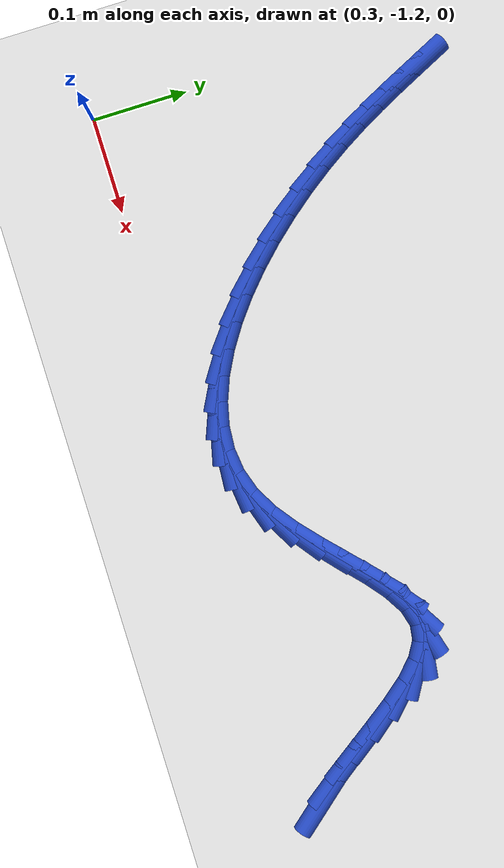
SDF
<sdf version="1.6">
 <world name="default">
  <model name="ground_plane">
   <static>1</static>
   <link name="link">
    <collision name="collision">
     <geometry><plane><normal>0 0 1</normal><size>100 100</size></plane></geometry>
     <surface><friction><ode><mu>100</mu><mu2>50</mu2></ode></friction></surface>
    </collision>
    <visual name="visual">
     <cast_shadows>0</cast_shadows>
     <geometry><plane><normal>0 0 1</normal><size>100 100</size></plane></geometry>
     <material>
      <script><uri>file://media/materials/scripts/gazebo.material</uri><name>Gazebo/WhiteGlow</name></script>
     </material>
    </visual>
   </link>
  </model>
  <model name="line">
   <link name="link_210">
    <pose>1.0375790568260825 -1.1791323190737744 0.01 0 1.57 -0.8643662372126113</pose>
    <collision name="collision">
     <geometry><cylinder><radius>0.01</radius><length>0.08</length></cylinder></geometry>
    </collision>
    <visual name="visual">
     <material>
      <script><name>Gazebo/Blue</name><uri>file://media/materials/scripts/gazebo.material</uri></script>
     </material>
     <geometry><cylinder><radius>0.01</radius><length>0.08</length></cylinder></geometry>
    </visual>
   </link>
   <link name="link_211">
    <pose>1.019030589205663 -1.1573960111573656 0.01 0 1.57 -0.9336557301680691</pose>
    <collision name="collision">
     <geometry><cylinder><radius>0.01</radius><length>0.08</length></cylinder></geometry>
    </collision>
    <visual name="visual">
     <material>
      <script><name>Gazebo/Blue</name><uri>file://media/materials/scripts/gazebo.material</uri></script>
     </material>
     <geometry><cylinder><radius>0.01</radius><length>0.08</length></cylinder></geometry>
    </visual>
   </link>
   <link name="link_212">
    <pose>1.0009759201199455 -1.1330013947562239 0.01 0 1.57 -0.9582950631995782</pose>
    <collision name="collision">
     <geometry><cylinder><radius>0.01</radius><length>0.08</length></cylinder></geometry>
    </collision>
    <visual name="visual">
     <material>
      <script><name>Gazebo/Blue</name><uri>file://media/materials/scripts/gazebo.material</uri></script>
     </material>
     <geometry><cylinder><radius>0.01</radius><length>0.08</length></cylinder></geometry>
    </visual>
   </link>
   <link name="link_213">
    <pose>0.9832339375587879 -1.1077512407800745 0.01 0 1.57 -0.9437365645763872</pose>
    <collision name="collision">
     <geometry><cylinder><radius>0.01</radius><length>0.08</length></cylinder></geometry>
    </collision>
    <visual name="visual">
     <material>
      <script><name>Gazebo/Blue</name><uri>file://media/materials/scripts/gazebo.material</uri></script>
     </material>
     <geometry><cylinder><radius>0.01</radius><length>0.08</length></cylinder></geometry>
    </visual>
   </link>
   <link name="link_214">
    <pose>0.965623529512047 -1.0834483201386411 0.01 0 1.57 -0.8843518211688481</pose>
    <collision name="collision">
     <geometry><cylinder><radius>0.01</radius><length>0.08</length></cylinder></geometry>
    </collision>
    <visual name="visual">
     <material>
      <script><name>Gazebo/Blue</name><uri>file://media/materials/scripts/gazebo.material</uri></script>
     </material>
     <geometry><cylinder><radius>0.01</radius><length>0.08</length></cylinder></geometry>
    </visual>
   </link>
   <link name="link_215">
    <pose>0.947963583969581 -1.0618954037416484 0.01 0 1.57 -0.7598824922310821</pose>
    <collision name="collision">
     <geometry><cylinder><radius>0.01</radius><length>0.08</length></cylinder></geometry>
    </collision>
    <visual name="visual">
     <material>
      <script><name>Gazebo/Blue</name><uri>file://media/materials/scripts/gazebo.material</uri></script>
     </material>
     <geometry><cylinder><radius>0.01</radius><length>0.08</length></cylinder></geometry>
    </visual>
   </link>
   <link name="link_216">
    <pose>0.9300729889212475 -1.0448952624988213 0.01 0 1.57 -0.5267779467179676</pose>
    <collision name="collision">
     <geometry><cylinder><radius>0.01</radius><length>0.08</length></cylinder></geometry>
    </collision>
    <visual name="visual">
     <material>
      <script><name>Gazebo/Blue</name><uri>file://media/materials/scripts/gazebo.material</uri></script>
     </material>
     <geometry><cylinder><radius>0.01</radius><length>0.08</length></cylinder></geometry>
    </visual>
   </link>
   <link name="link_217">
    <pose>0.9117706323569028 -1.0342506673198832 0.01 0 1.57 -0.13366536624466852</pose>
    <collision name="collision">
     <geometry><cylinder><radius>0.01</radius><length>0.08</length></cylinder></geometry>
    </collision>
    <visual name="visual">
     <material>
      <script><name>Gazebo/Blue</name><uri>file://media/materials/scripts/gazebo.material</uri></script>
     </material>
     <geometry><cylinder><radius>0.01</radius><length>0.08</length></cylinder></geometry>
    </visual>
   </link>
   <link name="link_218">
    <pose>0.8928782099697073 -1.03171025735867 0.01 0 1.57 0.2833987703408855</pose>
    <collision name="collision">
     <geometry><cylinder><radius>0.01</radius><length>0.08</length></cylinder></geometry>
    </collision>
    <visual name="visual">
     <material>
      <script><name>Gazebo/Blue</name><uri>file://media/materials/scripts/gazebo.material</uri></script>
     </material>
     <geometry><cylinder><radius>0.01</radius><length>0.08</length></cylinder></geometry>
    </visual>
   </link>
   <link name="link_219">
    <pose>0.8733009654070886 -1.0374118899375215 0.01 0 1.57 0.5433220270883908</pose>
    <collision name="collision">
     <geometry><cylinder><radius>0.01</radius><length>0.08</length></cylinder></geometry>
    </collision>
    <visual name="visual">
     <material>
      <script><name>Gazebo/Blue</name><uri>file://media/materials/scripts/gazebo.material</uri></script>
     </material>
     <geometry><cylinder><radius>0.01</radius><length>0.08</length></cylinder></geometry>
    </visual>
   </link>
   <link name="link_220">
    <pose>0.8530398246127422 -1.0496486937343479 0.01 0 1.57 0.6809078504208977</pose>
    <collision name="collision">
     <geometry><cylinder><radius>0.01</radius><length>0.08</length></cylinder></geometry>
    </collision>
    <visual name="visual">
     <material>
      <script><name>Gazebo/Blue</name><uri>file://media/materials/scripts/gazebo.material</uri></script>
     </material>
     <geometry><cylinder><radius>0.01</radius><length>0.08</length></cylinder></geometry>
    </visual>
   </link>
   <link name="link_221">
    <pose>0.8321009621017971 -1.0666126063975576 0.01 0 1.57 0.74379022459799</pose>
    <collision name="collision">
     <geometry><cylinder><radius>0.01</radius><length>0.08</length></cylinder></geometry>
    </collision>
    <visual name="visual">
     <material>
      <script><name>Gazebo/Blue</name><uri>file://media/materials/scripts/gazebo.material</uri></script>
     </material>
     <geometry><cylinder><radius>0.01</radius><length>0.08</length></cylinder></geometry>
    </visual>
   </link>
   <link name="link_222">
    <pose>0.8104905523893814 -1.0864955655755586 0.01 0 1.57 0.7557824389965457</pose>
    <collision name="collision">
     <geometry><cylinder><radius>0.01</radius><length>0.08</length></cylinder></geometry>
    </collision>
    <visual name="visual">
     <material>
      <script><name>Gazebo/Blue</name><uri>file://media/materials/scripts/gazebo.material</uri></script>
     </material>
     <geometry><cylinder><radius>0.01</radius><length>0.08</length></cylinder></geometry>
    </visual>
   </link>
   <link name="link_223">
    <pose>0.7882147699906247 -1.1074895089167596 0.01 0 1.57 0.724451236131454</pose>
    <collision name="collision">
     <geometry><cylinder><radius>0.01</radius><length>0.08</length></cylinder></geometry>
    </collision>
    <visual name="visual">
     <material>
      <script><name>Gazebo/Blue</name><uri>file://media/materials/scripts/gazebo.material</uri></script>
     </material>
     <geometry><cylinder><radius>0.01</radius><length>0.08</length></cylinder></geometry>
    </visual>
   </link>
   <link name="link_224">
    <pose>0.7652797894206552 -1.1277863740695688 0.01 0 1.57 0.6462283303173987</pose>
    <collision name="collision">
     <geometry><cylinder><radius>0.01</radius><length>0.08</length></cylinder></geometry>
    </collision>
    <visual name="visual">
     <material>
      <script><name>Gazebo/Blue</name><uri>file://media/materials/scripts/gazebo.material</uri></script>
     </material>
     <geometry><cylinder><radius>0.01</radius><length>0.08</length></cylinder></geometry>
    </visual>
   </link>
   <link name="link_225">
    <pose>0.741691785194602 -1.1455780986823947 0.01 0 1.57 0.5077355226130207</pose>
    <collision name="collision">
     <geometry><cylinder><radius>0.01</radius><length>0.08</length></cylinder></geometry>
    </collision>
    <visual name="visual">
     <material>
      <script><name>Gazebo/Blue</name><uri>file://media/materials/scripts/gazebo.material</uri></script>
     </material>
     <geometry><cylinder><radius>0.01</radius><length>0.08</length></cylinder></geometry>
    </visual>
   </link>
   <link name="link_226">
    <pose>0.7174573468472426 -1.1590618852222954 0.01 0 1.57 0.3143236681344245</pose>
    <collision name="collision">
     <geometry><cylinder><radius>0.01</radius><length>0.08</length></cylinder></geometry>
    </collision>
    <visual name="visual">
     <material>
      <script><name>Gazebo/Blue</name><uri>file://media/materials/scripts/gazebo.material</uri></script>
     </material>
     <geometry><cylinder><radius>0.01</radius><length>0.08</length></cylinder></geometry>
    </visual>
   </link>
   <link name="link_227">
    <pose>0.6926379117551568 -1.167130719935734 0.01 0 1.57 0.11563479361375013</pose>
    <collision name="collision">
     <geometry><cylinder><radius>0.01</radius><length>0.08</length></cylinder></geometry>
    </collision>
    <visual name="visual">
     <material>
      <script><name>Gazebo/Blue</name><uri>file://media/materials/scripts/gazebo.material</uri></script>
     </material>
     <geometry><cylinder><radius>0.01</radius><length>0.08</length></cylinder></geometry>
    </visual>
   </link>
   <link name="link_228">
    <pose>0.66740402601561 -1.1700617105870925 0.01 0 1.57 -0.06924120881023255</pose>
    <collision name="collision">
     <geometry><cylinder><radius>0.01</radius><length>0.08</length></cylinder></geometry>
    </collision>
    <visual name="visual">
     <material>
      <script><name>Gazebo/Blue</name><uri>file://media/materials/scripts/gazebo.material</uri></script>
     </material>
     <geometry><cylinder><radius>0.01</radius><length>0.08</length></cylinder></geometry>
    </visual>
   </link>
   <link name="link_229">
    <pose>0.6419391402412391 -1.1682956678720118 0.01 0 1.57 -0.23180882007256245</pose>
    <collision name="collision">
     <geometry><cylinder><radius>0.01</radius><length>0.08</length></cylinder></geometry>
    </collision>
    <visual name="visual">
     <material>
      <script><name>Gazebo/Blue</name><uri>file://media/materials/scripts/gazebo.material</uri></script>
     </material>
     <geometry><cylinder><radius>0.01</radius><length>0.08</length></cylinder></geometry>
    </visual>
   </link>
   <link name="link_230">
    <pose>0.6164267050446809 -1.1622734024861319 0.01 0 1.57 -0.36983059347142183</pose>
    <collision name="collision">
     <geometry><cylinder><radius>0.01</radius><length>0.08</length></cylinder></geometry>
    </collision>
    <visual name="visual">
     <material>
      <script><name>Gazebo/Blue</name><uri>file://media/materials/scripts/gazebo.material</uri></script>
     </material>
     <geometry><cylinder><radius>0.01</radius><length>0.08</length></cylinder></geometry>
    </visual>
   </link>
   <link name="link_231">
    <pose>0.5910501710385717 -1.1524357251250927 0.01 0 1.57 -0.485236667995909</pose>
    <collision name="collision">
     <geometry><cylinder><radius>0.01</radius><length>0.08</length></cylinder></geometry>
    </collision>
    <visual name="visual">
     <material>
      <script><name>Gazebo/Blue</name><uri>file://media/materials/scripts/gazebo.material</uri></script>
     </material>
     <geometry><cylinder><radius>0.01</radius><length>0.08</length></cylinder></geometry>
    </visual>
   </link>
   <link name="link_232">
    <pose>0.5659929888355486 -1.139223446484535 0.01 0 1.57 -0.5816740566064468</pose>
    <collision name="collision">
     <geometry><cylinder><radius>0.01</radius><length>0.08</length></cylinder></geometry>
    </collision>
    <visual name="visual">
     <material>
      <script><name>Gazebo/Blue</name><uri>file://media/materials/scripts/gazebo.material</uri></script>
     </material>
     <geometry><cylinder><radius>0.01</radius><length>0.08</length></cylinder></geometry>
    </visual>
   </link>
   <link name="link_233">
    <pose>0.5414386090482484 -1.1230773772600982 0.01 0 1.57 -0.6629967751265681</pose>
    <collision name="collision">
     <geometry><cylinder><radius>0.01</radius><length>0.08</length></cylinder></geometry>
    </collision>
    <visual name="visual">
     <material>
      <script><name>Gazebo/Blue</name><uri>file://media/materials/scripts/gazebo.material</uri></script>
     </material>
     <geometry><cylinder><radius>0.01</radius><length>0.08</length></cylinder></geometry>
    </visual>
   </link>
   <link name="link_234">
    <pose>0.5175704822893065 -1.104438328147422 0.01 0 1.57 -0.732638205849797</pose>
    <collision name="collision">
     <geometry><cylinder><radius>0.01</radius><length>0.08</length></cylinder></geometry>
    </collision>
    <visual name="visual">
     <material>
      <script><name>Gazebo/Blue</name><uri>file://media/materials/scripts/gazebo.material</uri></script>
     </material>
     <geometry><cylinder><radius>0.01</radius><length>0.08</length></cylinder></geometry>
    </visual>
   </link>
   <link name="link_235">
    <pose>0.4945720591713614 -1.0837471098421478 0.01 0 1.57 -0.7934731366846893</pose>
    <collision name="collision">
     <geometry><cylinder><radius>0.01</radius><length>0.08</length></cylinder></geometry>
    </collision>
    <visual name="visual">
     <material>
      <script><name>Gazebo/Blue</name><uri>file://media/materials/scripts/gazebo.material</uri></script>
     </material>
     <geometry><cylinder><radius>0.01</radius><length>0.08</length></cylinder></geometry>
    </visual>
   </link>
   <link name="link_236">
    <pose>0.4726267903070493 -1.0614445330399156 0.01 0 1.57 -0.8478868380789532</pose>
    <collision name="collision">
     <geometry><cylinder><radius>0.01</radius><length>0.08</length></cylinder></geometry>
    </collision>
    <visual name="visual">
     <material>
      <script><name>Gazebo/Blue</name><uri>file://media/materials/scripts/gazebo.material</uri></script>
     </material>
     <geometry><cylinder><radius>0.01</radius><length>0.08</length></cylinder></geometry>
    </visual>
   </link>
   <link name="link_237">
    <pose>0.4519181263090065 -1.037971408436365 0.01 0 1.57 -0.897914425568171</pose>
    <collision name="collision">
     <geometry><cylinder><radius>0.01</radius><length>0.08</length></cylinder></geometry>
    </collision>
    <visual name="visual">
     <material>
      <script><name>Gazebo/Blue</name><uri>file://media/materials/scripts/gazebo.material</uri></script>
     </material>
     <geometry><cylinder><radius>0.01</radius><length>0.08</length></cylinder></geometry>
    </visual>
   </link>
   <link name="link_238">
    <pose>0.43262951778986997 -1.0137685467271365 0.01 0 1.57 -0.9454028274783461</pose>
    <collision name="collision">
     <geometry><cylinder><radius>0.01</radius><length>0.08</length></cylinder></geometry>
    </collision>
    <visual name="visual">
     <material>
      <script><name>Gazebo/Blue</name><uri>file://media/materials/scripts/gazebo.material</uri></script>
     </material>
     <geometry><cylinder><radius>0.01</radius><length>0.08</length></cylinder></geometry>
    </visual>
   </link>
   <link name="link_239">
    <pose>0.41494441536227616 -0.9892767586078699 0.01 0 1.57 -0.9920285569266573</pose>
    <collision name="collision">
     <geometry><cylinder><radius>0.01</radius><length>0.08</length></cylinder></geometry>
    </collision>
    <visual name="visual">
     <material>
      <script><name>Gazebo/Blue</name><uri>file://media/materials/scripts/gazebo.material</uri></script>
     </material>
     <geometry><cylinder><radius>0.01</radius><length>0.08</length></cylinder></geometry>
    </visual>
   </link>
   <link name="link_240">
    <pose>0.3990327843340395 -0.9649250307982856 0.01 0 1.57 -1.0356925260448544</pose>
    <collision name="collision">
     <geometry><cylinder><radius>0.01</radius><length>0.08</length></cylinder></geometry>
    </collision>
    <visual name="visual">
     <material>
      <script><name>Gazebo/Blue</name><uri>file://media/materials/scripts/gazebo.material</uri></script>
     </material>
     <geometry><cylinder><radius>0.01</radius><length>0.08</length></cylinder></geometry>
    </visual>
   </link>
   <link name="link_241">
    <pose>0.38479383600016925 -0.9409049516819263 0.01 0 1.57 -1.0720574662226114</pose>
    <collision name="collision">
     <geometry><cylinder><radius>0.01</radius><length>0.08</length></cylinder></geometry>
    </collision>
    <visual name="visual">
     <material>
      <script><name>Gazebo/Blue</name><uri>file://media/materials/scripts/gazebo.material</uri></script>
     </material>
     <geometry><cylinder><radius>0.01</radius><length>0.08</length></cylinder></geometry>
    </visual>
   </link>
   <link name="link_242">
    <pose>0.3718762643447563 -0.91718845493739 0.01 0 1.57 -1.0992547355315194</pose>
    <collision name="collision">
     <geometry><cylinder><radius>0.01</radius><length>0.08</length></cylinder></geometry>
    </collision>
    <visual name="visual">
     <material>
      <script><name>Gazebo/Blue</name><uri>file://media/materials/scripts/gazebo.material</uri></script>
     </material>
     <geometry><cylinder><radius>0.01</radius><length>0.08</length></cylinder></geometry>
    </visual>
   </link>
   <link name="link_243">
    <pose>0.3599193330454532 -0.8937392057081747 0.01 0 1.57 -1.1158740501135027</pose>
    <collision name="collision">
     <geometry><cylinder><radius>0.01</radius><length>0.08</length></cylinder></geometry>
    </collision>
    <visual name="visual">
     <material>
      <script><name>Gazebo/Blue</name><uri>file://media/materials/scripts/gazebo.material</uri></script>
     </material>
     <geometry><cylinder><radius>0.01</radius><length>0.08</length></cylinder></geometry>
    </visual>
   </link>
   <link name="link_244">
    <pose>0.34856230577991404 -0.870520869137781 0.01 0 1.57 -1.1209331059616952</pose>
    <collision name="collision">
     <geometry><cylinder><radius>0.01</radius><length>0.08</length></cylinder></geometry>
    </collision>
    <visual name="visual">
     <material>
      <script><name>Gazebo/Blue</name><uri>file://media/materials/scripts/gazebo.material</uri></script>
     </material>
     <geometry><cylinder><radius>0.01</radius><length>0.08</length></cylinder></geometry>
    </visual>
   </link>
  </model>
 </world>
</sdf>
